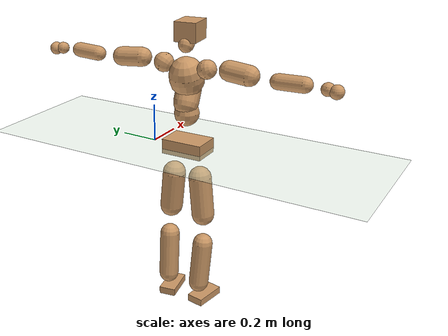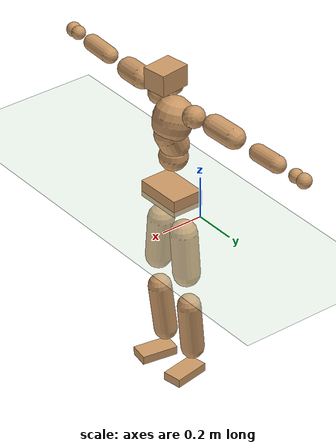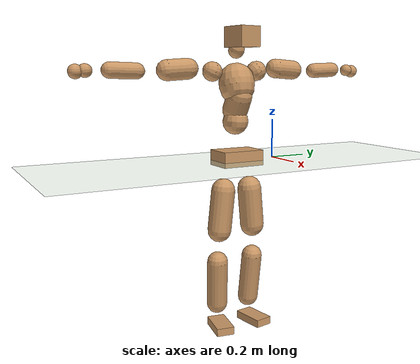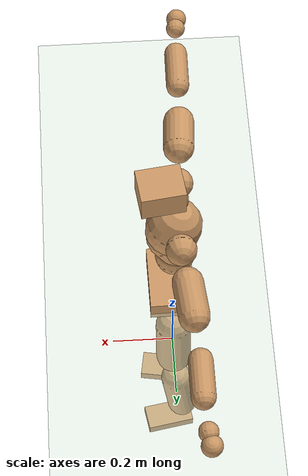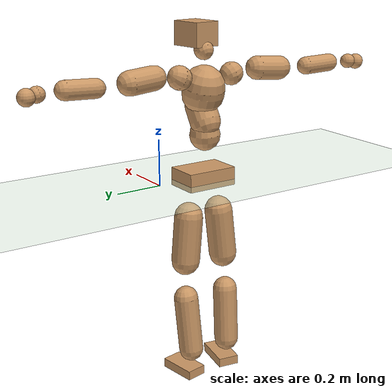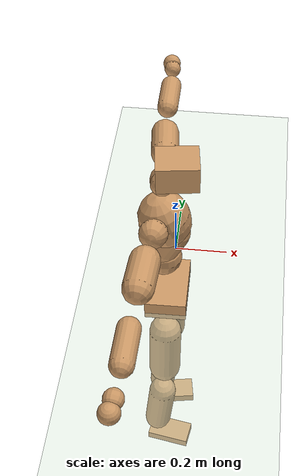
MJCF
<mujoco model="humanoid">
  <compiler coordinate="local" angle="radian"/>
  <default>
    <joint damping="0.0" armature="0.01" stiffness="0.0" limited="true"/>
    <geom conaffinity="1" condim="3" contype="7" margin="0.001" rgba="0.8 0.6 .4 1"/>
  </default>
  <asset>
    <texture type="skybox" builtin="gradient" rgb1=".4 .5 .6" rgb2="0 0 0" width="100" height="100"/>
    <texture builtin="flat" height="1278" mark="cross" markrgb="1 1 1" name="texgeom" random="0.01" rgb1="0.8 0.6 0.4" rgb2="0.8 0.6 0.4" type="cube" width="127"/>
    <texture builtin="checker" height="100" name="texplane" rgb1="0 0 0" rgb2="0.8 0.8 0.8" type="2d" width="100"/>
    <material name="MatPlane" reflectance="0.5" shininess="1" specular="1" texrepeat="60 60" texture="texplane"/>
    <material name="geom" texture="texgeom" texuniform="true"/>
  </asset>
  <worldbody>
    <light cutoff="100" diffuse="1 1 1" dir="-0 0 -1.3" directional="true" exponent="1" pos="0 0 1.3" specular=".1 .1 .1"/>
    <geom conaffinity="1" condim="3" name="floor" pos="0 0 0" rgba="0.8 0.9 0.8 1" size="100 100 .2" type="plane" material="MatPlane"/>
    <body name="Pelvis" pos="-0.0013 -0.2121 0.025">
      <freejoint name="Pelvis"/>
      <geom type="box" contype="1" conaffinity="1" density="5359.374923" pos="-0.0067 -0.0001 -0.0125" size="0.0765 0.1137 0.0396" quat="1.0000 0.0000 0.0000 0.0067" name="Pelvis"/>
      <body name="L_Hip" pos="-0.0126 0.0715 -0.0904">
        <joint name="L_Hip_x" type="hinge" pos="0 0 0" axis="1 0 0" stiffness="1600" damping="160" armature="0.02" range="-180.0000 180.0000"/>
        <joint name="L_Hip_y" type="hinge" pos="0 0 0" axis="0 1 0" stiffness="1600" damping="160" armature="0.02" range="-180.0000 180.0000"/>
        <joint name="L_Hip_z" type="hinge" pos="0 0 0" axis="0 0 1" stiffness="1600" damping="160" armature="0.02" range="-180.0000 180.0000"/>
        <geom type="capsule" contype="1" conaffinity="1" density="2040.816327" size="0.0626" fromto="-0.0003 0.0085 -0.0922 -0.0010 0.0272 -0.2955" name="L_Hip"/>
        <body name="L_Knee" pos="-0.0013 0.0356 -0.3877">
          <joint name="L_Knee_x" type="hinge" pos="0 0 0" axis="1 0 0" stiffness="1600" damping="160" armature="0.02" range="-180.0000 180.0000"/>
          <joint name="L_Knee_y" type="hinge" pos="0 0 0" axis="0 1 0" stiffness="1600" damping="160" armature="0.02" range="-180.0000 180.0000"/>
          <joint name="L_Knee_z" type="hinge" pos="0 0 0" axis="0 0 1" stiffness="1600" damping="160" armature="0.02" range="-180.0000 180.0000"/>
          <geom type="capsule" contype="1" conaffinity="1" density="1234.567901" size="0.0544" fromto="-0.0093 -0.0027 -0.0838 -0.0364 -0.0105 -0.3270" name="L_Knee"/>
          <body name="L_Ankle" pos="-0.0457 -0.0133 -0.4108">
            <joint name="L_Ankle_x" type="hinge" pos="0 0 0" axis="1 0 0" stiffness="1600" damping="160" armature="0.02" range="-180.0000 180.0000"/>
            <joint name="L_Ankle_y" type="hinge" pos="0 0 0" axis="0 1 0" stiffness="1600" damping="160" armature="0.02" range="-180.0000 180.0000"/>
            <joint name="L_Ankle_z" type="hinge" pos="0 0 0" axis="0 0 1" stiffness="1600" damping="160" armature="0.02" range="-180.0000 180.0000"/>
            <geom type="box" contype="1" conaffinity="1" density="999.999967" pos="0.0606 0.0104 -0.0287" size="0.0866 0.0459 0.0206" quat="0.9964 0.0000 0.0000 0.0851" name="L_Ankle"/>
            <body name="L_Toe" pos="0.1212 0.0208 -0.0575">
              <joint name="L_Toe_x" type="hinge" pos="0 0 0" axis="1 0 0" stiffness="1000" damping="100" armature="0.02" range="-180.0000 180.0000"/>
              <joint name="L_Toe_y" type="hinge" pos="0 0 0" axis="0 1 0" stiffness="1000" damping="100" armature="0.02" range="-180.0000 180.0000"/>
              <joint name="L_Toe_z" type="hinge" pos="0 0 0" axis="0 0 1" stiffness="1000" damping="100" armature="0.02" range="-180.0000 180.0000"/>
              <geom type="box" contype="1" conaffinity="1" density="8789026.709114" pos="0.0000 0.0000 0.0283" size="0.001 0.0023 0.001" quat="0.9958 0.0000 0.0000 0.0915" name="L_Toe"/>
            </body>
          </body>
        </body>
      </body>
      <body name="R_Hip" pos="-0.0088 -0.0689 -0.0891">
        <joint name="R_Hip_x" type="hinge" pos="0 0 0" axis="1 0 0" stiffness="1600" damping="160" armature="0.02" range="-180.0000 180.0000"/>
        <joint name="R_Hip_y" type="hinge" pos="0 0 0" axis="0 1 0" stiffness="1600" damping="160" armature="0.02" range="-180.0000 180.0000"/>
        <joint name="R_Hip_z" type="hinge" pos="0 0 0" axis="0 0 1" stiffness="1600" damping="160" armature="0.02" range="-180.0000 180.0000"/>
        <geom type="capsule" contype="1" conaffinity="1" density="2040.816327" size="0.0618" fromto="-0.0011 -0.0096 -0.0913 -0.0037 -0.0321 -0.3037" name="R_Hip"/>
        <body name="R_Knee" pos="-0.0048 -0.0418 -0.395">
          <joint name="R_Knee_x" type="hinge" pos="0 0 0" axis="1 0 0" stiffness="1600" damping="160" armature="0.02" range="-180.0000 180.0000"/>
          <joint name="R_Knee_y" type="hinge" pos="0 0 0" axis="0 1 0" stiffness="1600" damping="160" armature="0.02" range="-180.0000 180.0000"/>
          <joint name="R_Knee_z" type="hinge" pos="0 0 0" axis="0 0 1" stiffness="1600" damping="160" armature="0.02" range="-180.0000 180.0000"/>
          <geom type="capsule" contype="1" conaffinity="1" density="1234.567901" size="0.0547" fromto="-0.0089 0.0032 -0.0841 -0.0342 0.0124 -0.3251" name="R_Knee"/>
          <body name="R_Ankle" pos="-0.0431 0.0156 -0.4093">
            <joint name="R_Ankle_x" type="hinge" pos="0 0 0" axis="1 0 0" stiffness="1600" damping="160" armature="0.02" range="-180.0000 180.0000"/>
            <joint name="R_Ankle_y" type="hinge" pos="0 0 0" axis="0 1 0" stiffness="1600" damping="160" armature="0.02" range="-180.0000 180.0000"/>
            <joint name="R_Ankle_z" type="hinge" pos="0 0 0" axis="0 0 1" stiffness="1600" damping="160" armature="0.02" range="-180.0000 180.0000"/>
            <geom type="box" contype="1" conaffinity="1" density="1000.00003" pos="0.0624 -0.0104 -0.0247" size="0.0875 0.047 0.0204" quat="0.9966 0.0000 0.0000 -0.0829" name="R_Ankle"/>
            <body name="R_Toe" pos="0.1247 -0.0209 -0.0494">
              <joint name="R_Toe_x" type="hinge" pos="0 0 0" axis="1 0 0" stiffness="1000" damping="100" armature="0.02" range="-180.0000 180.0000"/>
              <joint name="R_Toe_y" type="hinge" pos="0 0 0" axis="0 1 0" stiffness="1000" damping="100" armature="0.02" range="-180.0000 180.0000"/>
              <joint name="R_Toe_z" type="hinge" pos="0 0 0" axis="0 0 1" stiffness="1000" damping="100" armature="0.02" range="-180.0000 180.0000"/>
              <geom type="box" contype="1" conaffinity="1" density="8583784.907186" pos="0.0000 0.0000 0.0270" size="0.0009 0.0023 0.0011" quat="0.9973 0.0000 0.0000 -0.0740" name="R_Toe"/>
            </body>
          </body>
        </body>
      </body>
      <body name="Torso" pos="-0.019 -0.0032 0.1047">
        <joint name="Torso_x" type="hinge" pos="0 0 0" axis="1 0 0" stiffness="2000" damping="200" armature="0.02" range="-180.0000 180.0000"/>
        <joint name="Torso_y" type="hinge" pos="0 0 0" axis="0 1 0" stiffness="2000" damping="200" armature="0.02" range="-180.0000 180.0000"/>
        <joint name="Torso_z" type="hinge" pos="0 0 0" axis="0 0 1" stiffness="2000" damping="200" armature="0.02" range="-180.0000 180.0000"/>
        <geom type="capsule" contype="1" conaffinity="1" density="2040.816327" size="0.0667" fromto="-0.0007 0.0020 0.0669 -0.0007 0.0021 0.0689" name="Torso"/>
        <body name="Spine" pos="-0.0014 0.0041 0.1358">
          <joint name="Spine_x" type="hinge" pos="0 0 0" axis="1 0 0" stiffness="2000" damping="200" armature="0.02" range="-180.0000 180.0000"/>
          <joint name="Spine_y" type="hinge" pos="0 0 0" axis="0 1 0" stiffness="2000" damping="200" armature="0.02" range="-180.0000 180.0000"/>
          <joint name="Spine_z" type="hinge" pos="0 0 0" axis="0 0 1" stiffness="2000" damping="200" armature="0.02" range="-180.0000 180.0000"/>
          <geom type="capsule" contype="1" conaffinity="1" density="2040.816327" size="0.0661" fromto="0.0307 0.0029 0.0584 -0.0050 -0.0005 -0.0096" name="Spine"/>
          <body name="Chest" pos="0.0257 0.0024 0.0488">
            <joint name="Chest_x" type="hinge" pos="0 0 0" axis="1 0 0" stiffness="2000" damping="200" armature="0.02" range="-180.0000 180.0000"/>
            <joint name="Chest_y" type="hinge" pos="0 0 0" axis="0 1 0" stiffness="2000" damping="200" armature="0.02" range="-180.0000 180.0000"/>
            <joint name="Chest_z" type="hinge" pos="0 0 0" axis="0 0 1" stiffness="2000" damping="200" armature="0.02" range="-180.0000 180.0000"/>
            <geom type="capsule" contype="1" conaffinity="1" density="2040.816327" size="0.0912" fromto="-0.0234 -0.0006 0.0881 -0.0162 -0.0004 0.0610" name="Chest"/>
            <body name="Neck" pos="-0.0481 -0.0021 0.2115">
              <joint name="Neck_x" type="hinge" pos="0 0 0" axis="1 0 0" stiffness="1000" damping="100" armature="0.02" range="-180.0000 180.0000"/>
              <joint name="Neck_y" type="hinge" pos="0 0 0" axis="0 1 0" stiffness="1000" damping="100" armature="0.02" range="-180.0000 180.0000"/>
              <joint name="Neck_z" type="hinge" pos="0 0 0" axis="0 0 1" stiffness="1000" damping="100" armature="0.02" range="-180.0000 180.0000"/>
              <geom type="capsule" contype="1" conaffinity="1" density="1000" size="0.0409" fromto="0.0248 0.0023 0.0324 0.0222 0.0021 0.0289" name="Neck"/>
              <body name="Head" pos="0.047 0.0044 0.0613">
                <joint name="Head_x" type="hinge" pos="0 0 0" axis="1 0 0" stiffness="1000" damping="100" armature="0.02" range="-180.0000 180.0000"/>
                <joint name="Head_y" type="hinge" pos="0 0 0" axis="0 1 0" stiffness="1000" damping="100" armature="0.02" range="-180.0000 180.0000"/>
                <joint name="Head_z" type="hinge" pos="0 0 0" axis="0 0 1" stiffness="1000" damping="100" armature="0.02" range="-180.0000 180.0000"/>
                <geom type="box" contype="1" conaffinity="1" density="2250.000132" pos="0.0245 0.0032 0.0317" size="0.072 0.0581 0.0505" quat="0.9979 0.0000 0.0000 0.0649" name="Head"/>
              </body>
            </body>
            <body name="L_Thorax" pos="-0.0329 0.0783 0.1193">
              <joint name="L_Thorax_x" type="hinge" pos="0 0 0" axis="1 0 0" stiffness="1000" damping="100" armature="0.02" range="-180.0000 180.0000"/>
              <joint name="L_Thorax_y" type="hinge" pos="0 0 0" axis="0 1 0" stiffness="1000" damping="100" armature="0.02" range="-180.0000 180.0000"/>
              <joint name="L_Thorax_z" type="hinge" pos="0 0 0" axis="0 0 1" stiffness="1000" damping="100" armature="0.02" range="-180.0000 180.0000"/>
              <geom type="capsule" contype="1" conaffinity="1" density="1000" size="0.051" fromto="-0.0028 0.0472 0.0192 -0.0027 0.0449 0.0182" name="L_Thorax"/>
              <body name="L_Shoulder" pos="-0.0055 0.0921 0.0374">
                <joint name="L_Shoulder_x" type="hinge" pos="0 0 0" axis="1 0 0" stiffness="1000" damping="100" armature="0.02" range="-720.0000 720.0000"/>
                <joint name="L_Shoulder_y" type="hinge" pos="0 0 0" axis="0 1 0" stiffness="1000" damping="100" armature="0.02" range="-720.0000 720.0000"/>
                <joint name="L_Shoulder_z" type="hinge" pos="0 0 0" axis="0 0 1" stiffness="1000" damping="100" armature="0.02" range="-720.0000 720.0000"/>
                <geom type="capsule" contype="1" conaffinity="1" density="1000" size="0.0504" fromto="-0.0084 0.0798 -0.0056 -0.0205 0.1959 -0.0137" name="L_Shoulder"/>
                <body name="L_Elbow" pos="-0.0289 0.2757 -0.0193">
                  <joint name="L_Elbow_x" type="hinge" pos="0 0 0" axis="1 0 0" stiffness="1000" damping="100" armature="0.02" range="-720.0000 720.0000"/>
                  <joint name="L_Elbow_y" type="hinge" pos="0 0 0" axis="0 1 0" stiffness="1000" damping="100" armature="0.02" range="-720.0000 720.0000"/>
                  <joint name="L_Elbow_z" type="hinge" pos="0 0 0" axis="0 0 1" stiffness="1000" damping="100" armature="0.02" range="-720.0000 720.0000"/>
                  <geom type="capsule" contype="1" conaffinity="1" density="1000" size="0.039" fromto="0.0002 0.0690 0.0027 0.0006 0.1945 0.0076" name="L_Elbow"/>
                  <body name="L_Wrist" pos="0.0009 0.2635 0.0103">
                    <joint name="L_Wrist_x" type="hinge" pos="0 0 0" axis="1 0 0" stiffness="600" damping="60" armature="0.02" range="-180.0000 180.0000"/>
                    <joint name="L_Wrist_y" type="hinge" pos="0 0 0" axis="0 1 0" stiffness="600" damping="60" armature="0.02" range="-180.0000 180.0000"/>
                    <joint name="L_Wrist_z" type="hinge" pos="0 0 0" axis="0 0 1" stiffness="600" damping="60" armature="0.02" range="-180.0000 180.0000"/>
                    <geom type="capsule" contype="1" conaffinity="1" density="1000" size="0.0317" fromto="-0.0069 0.0416 -0.0052 -0.0072 0.0436 -0.0055" name="L_Wrist"/>
                    <body name="L_Hand" pos="-0.0141 0.0852 -0.0107">
                      <joint name="L_Hand_x" type="hinge" pos="0 0 0" axis="1 0 0" stiffness="600" damping="60" armature="0.02" range="-180.0000 180.0000"/>
                      <joint name="L_Hand_y" type="hinge" pos="0 0 0" axis="0 1 0" stiffness="600" damping="60" armature="0.02" range="-180.0000 180.0000"/>
                      <joint name="L_Hand_z" type="hinge" pos="0 0 0" axis="0 0 1" stiffness="600" damping="60" armature="0.02" range="-180.0000 180.0000"/>
                      <geom type="sphere" contype="1" conaffinity="1" density="1000" size="0.0341" pos="0.0000 0.0000 0.0000" name="L_Hand"/>
                    </body>
                  </body>
                </body>
              </body>
            </body>
            <body name="R_Thorax" pos="-0.0378 -0.0794 0.1164">
              <joint name="R_Thorax_x" type="hinge" pos="0 0 0" axis="1 0 0" stiffness="1000" damping="100" armature="0.02" range="-180.0000 180.0000"/>
              <joint name="R_Thorax_y" type="hinge" pos="0 0 0" axis="0 1 0" stiffness="1000" damping="100" armature="0.02" range="-180.0000 180.0000"/>
              <joint name="R_Thorax_z" type="hinge" pos="0 0 0" axis="0 0 1" stiffness="1000" damping="100" armature="0.02" range="-180.0000 180.0000"/>
              <geom type="capsule" contype="1" conaffinity="1" density="1000" size="0.0495" fromto="-0.0045 -0.0474 0.0186 -0.0046 -0.0492 0.0193" name="R_Thorax"/>
              <body name="R_Shoulder" pos="-0.0091 -0.0966 0.0379">
                <joint name="R_Shoulder_x" type="hinge" pos="0 0 0" axis="1 0 0" stiffness="1000" damping="100" armature="0.02" range="-720.0000 720.0000"/>
                <joint name="R_Shoulder_y" type="hinge" pos="0 0 0" axis="0 1 0" stiffness="1000" damping="100" armature="0.02" range="-720.0000 720.0000"/>
                <joint name="R_Shoulder_z" type="hinge" pos="0 0 0" axis="0 0 1" stiffness="1000" damping="100" armature="0.02" range="-720.0000 720.0000"/>
                <geom type="capsule" contype="1" conaffinity="1" density="1000" size="0.0517" fromto="-0.0057 -0.0813 -0.0055 -0.0134 -0.1899 -0.0128" name="R_Shoulder"/>
                <body name="R_Elbow" pos="-0.0192 -0.2712 -0.0182">
                  <joint name="R_Elbow_x" type="hinge" pos="0 0 0" axis="1 0 0" stiffness="1000" damping="100" armature="0.02" range="-720.0000 720.0000"/>
                  <joint name="R_Elbow_y" type="hinge" pos="0 0 0" axis="0 1 0" stiffness="1000" damping="100" armature="0.02" range="-720.0000 720.0000"/>
                  <joint name="R_Elbow_z" type="hinge" pos="0 0 0" axis="0 0 1" stiffness="1000" damping="100" armature="0.02" range="-720.0000 720.0000"/>
                  <geom type="capsule" contype="1" conaffinity="1" density="1000" size="0.0388" fromto="-0.0010 -0.0688 0.0020 -0.0030 -0.2005 0.0059" name="R_Elbow"/>
                  <body name="R_Wrist" pos="-0.0041 -0.2693 0.0079">
                    <joint name="R_Wrist_x" type="hinge" pos="0 0 0" axis="1 0 0" stiffness="600" damping="60" armature="0.02" range="-180.0000 180.0000"/>
                    <joint name="R_Wrist_y" type="hinge" pos="0 0 0" axis="0 1 0" stiffness="600" damping="60" armature="0.02" range="-180.0000 180.0000"/>
                    <joint name="R_Wrist_z" type="hinge" pos="0 0 0" axis="0 0 1" stiffness="600" damping="60" armature="0.02" range="-180.0000 180.0000"/>
                    <geom type="capsule" contype="1" conaffinity="1" density="1000" size="0.0323" fromto="-0.0055 -0.0420 -0.0038 -0.0057 -0.0440 -0.0040" name="R_Wrist"/>
                    <body name="R_Hand" pos="-0.0112 -0.0861 -0.0079">
                      <joint name="R_Hand_x" type="hinge" pos="0 0 0" axis="1 0 0" stiffness="600" damping="60" armature="0.02" range="-180.0000 180.0000"/>
                      <joint name="R_Hand_y" type="hinge" pos="0 0 0" axis="0 1 0" stiffness="600" damping="60" armature="0.02" range="-180.0000 180.0000"/>
                      <joint name="R_Hand_z" type="hinge" pos="0 0 0" axis="0 0 1" stiffness="600" damping="60" armature="0.02" range="-180.0000 180.0000"/>
                      <geom type="sphere" contype="1" conaffinity="1" density="1000" size="0.0342" pos="0.0000 0.0000 0.0000" name="R_Hand"/>
                    </body>
                  </body>
                </body>
              </body>
            </body>
          </body>
        </body>
      </body>
    </body>
  </worldbody>
  <actuator>
    <motor name="L_Hip_x" joint="L_Hip_x" gear="500"/>
    <motor name="L_Hip_y" joint="L_Hip_y" gear="500"/>
    <motor name="L_Hip_z" joint="L_Hip_z" gear="500"/>
    <motor name="L_Knee_x" joint="L_Knee_x" gear="500"/>
    <motor name="L_Knee_y" joint="L_Knee_y" gear="500"/>
    <motor name="L_Knee_z" joint="L_Knee_z" gear="500"/>
    <motor name="L_Ankle_x" joint="L_Ankle_x" gear="500"/>
    <motor name="L_Ankle_y" joint="L_Ankle_y" gear="500"/>
    <motor name="L_Ankle_z" joint="L_Ankle_z" gear="500"/>
    <motor name="L_Toe_x" joint="L_Toe_x" gear="500"/>
    <motor name="L_Toe_y" joint="L_Toe_y" gear="500"/>
    <motor name="L_Toe_z" joint="L_Toe_z" gear="500"/>
    <motor name="R_Hip_x" joint="R_Hip_x" gear="500"/>
    <motor name="R_Hip_y" joint="R_Hip_y" gear="500"/>
    <motor name="R_Hip_z" joint="R_Hip_z" gear="500"/>
    <motor name="R_Knee_x" joint="R_Knee_x" gear="500"/>
    <motor name="R_Knee_y" joint="R_Knee_y" gear="500"/>
    <motor name="R_Knee_z" joint="R_Knee_z" gear="500"/>
    <motor name="R_Ankle_x" joint="R_Ankle_x" gear="500"/>
    <motor name="R_Ankle_y" joint="R_Ankle_y" gear="500"/>
    <motor name="R_Ankle_z" joint="R_Ankle_z" gear="500"/>
    <motor name="R_Toe_x" joint="R_Toe_x" gear="500"/>
    <motor name="R_Toe_y" joint="R_Toe_y" gear="500"/>
    <motor name="R_Toe_z" joint="R_Toe_z" gear="500"/>
    <motor name="Torso_x" joint="Torso_x" gear="500"/>
    <motor name="Torso_y" joint="Torso_y" gear="500"/>
    <motor name="Torso_z" joint="Torso_z" gear="500"/>
    <motor name="Spine_x" joint="Spine_x" gear="500"/>
    <motor name="Spine_y" joint="Spine_y" gear="500"/>
    <motor name="Spine_z" joint="Spine_z" gear="500"/>
    <motor name="Chest_x" joint="Chest_x" gear="500"/>
    <motor name="Chest_y" joint="Chest_y" gear="500"/>
    <motor name="Chest_z" joint="Chest_z" gear="500"/>
    <motor name="Neck_x" joint="Neck_x" gear="500"/>
    <motor name="Neck_y" joint="Neck_y" gear="500"/>
    <motor name="Neck_z" joint="Neck_z" gear="500"/>
    <motor name="Head_x" joint="Head_x" gear="500"/>
    <motor name="Head_y" joint="Head_y" gear="500"/>
    <motor name="Head_z" joint="Head_z" gear="500"/>
    <motor name="L_Thorax_x" joint="L_Thorax_x" gear="500"/>
    <motor name="L_Thorax_y" joint="L_Thorax_y" gear="500"/>
    <motor name="L_Thorax_z" joint="L_Thorax_z" gear="500"/>
    <motor name="L_Shoulder_x" joint="L_Shoulder_x" gear="500"/>
    <motor name="L_Shoulder_y" joint="L_Shoulder_y" gear="500"/>
    <motor name="L_Shoulder_z" joint="L_Shoulder_z" gear="500"/>
    <motor name="L_Elbow_x" joint="L_Elbow_x" gear="500"/>
    <motor name="L_Elbow_y" joint="L_Elbow_y" gear="500"/>
    <motor name="L_Elbow_z" joint="L_Elbow_z" gear="500"/>
    <motor name="L_Wrist_x" joint="L_Wrist_x" gear="500"/>
    <motor name="L_Wrist_y" joint="L_Wrist_y" gear="500"/>
    <motor name="L_Wrist_z" joint="L_Wrist_z" gear="500"/>
    <motor name="L_Hand_x" joint="L_Hand_x" gear="500"/>
    <motor name="L_Hand_y" joint="L_Hand_y" gear="500"/>
    <motor name="L_Hand_z" joint="L_Hand_z" gear="500"/>
    <motor name="R_Thorax_x" joint="R_Thorax_x" gear="500"/>
    <motor name="R_Thorax_y" joint="R_Thorax_y" gear="500"/>
    <motor name="R_Thorax_z" joint="R_Thorax_z" gear="500"/>
    <motor name="R_Shoulder_x" joint="R_Shoulder_x" gear="500"/>
    <motor name="R_Shoulder_y" joint="R_Shoulder_y" gear="500"/>
    <motor name="R_Shoulder_z" joint="R_Shoulder_z" gear="500"/>
    <motor name="R_Elbow_x" joint="R_Elbow_x" gear="500"/>
    <motor name="R_Elbow_y" joint="R_Elbow_y" gear="500"/>
    <motor name="R_Elbow_z" joint="R_Elbow_z" gear="500"/>
    <motor name="R_Wrist_x" joint="R_Wrist_x" gear="500"/>
    <motor name="R_Wrist_y" joint="R_Wrist_y" gear="500"/>
    <motor name="R_Wrist_z" joint="R_Wrist_z" gear="500"/>
    <motor name="R_Hand_x" joint="R_Hand_x" gear="500"/>
    <motor name="R_Hand_y" joint="R_Hand_y" gear="500"/>
    <motor name="R_Hand_z" joint="R_Hand_z" gear="500"/>
  </actuator>
  <contact>
    <exclude body1="Torso" body2="Chest"/>
    <exclude body1="Head" body2="Chest"/>
    <exclude body1="R_Knee" body2="R_Toe"/>
    <exclude body1="R_Knee" body2="L_Ankle"/>
    <exclude body1="R_Knee" body2="L_Toe"/>
    <exclude body1="L_Knee" body2="L_Toe"/>
    <exclude body1="L_Knee" body2="R_Ankle"/>
    <exclude body1="L_Knee" body2="R_Toe"/>
    <exclude body1="L_Shoulder" body2="Chest"/>
    <exclude body1="R_Shoulder" body2="Chest"/>
  </contact>
  <sensor/>
  <size njmax="700" nconmax="700"/>
</mujoco>
